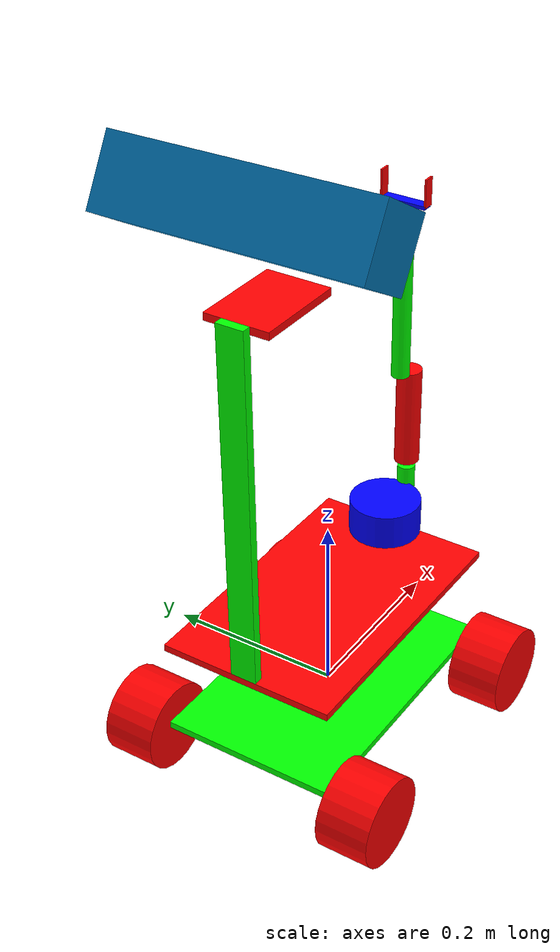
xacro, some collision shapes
<?xml version='1.0'?>

<robot name="ommp_real" xmlns:xacro="http://www.ros.org/wiki/xacro">

  <arg name="sim" default="false"/>

  <!-- Common design Properties-->
  <xacro:include filename="$(find ommp_description)/urdf/robots/ommp_real/configuration.urdf.xacro" />

  <!-- Include Sensors macros -->

    <!--ydlidar -->
  <xacro:include filename="$(find ommp_description)/urdf/sensors/ydlidar/ydlidar.urdf.xacro" />
    <!--imu -->
  <xacro:include filename="$(find ommp_description)/urdf/sensors/imu/imu.urdf.xacro" />
    <!-- kinect -->
  <xacro:include filename="$(find ommp_description)/urdf/sensors/kinect/kinect_real.urdf.xacro" />

  <!-- Include Bases-->
  <xacro:include filename="$(find ommp_description)/urdf/bases/ommp_base_real/ommp_bases.urdf.xacro" />

  <!-- Wheel Macro-->
  <xacro:include filename="$(find ommp_description)/urdf/wheels/costum_wheel/costum_wheel.urdf.xacro" />

  <!-- Incude Inertia macros -->
  <xacro:include filename="$(find ommp_description)/urdf/macros/inertia_macros.urdf.xacro" />

  <!-- Include costum Arm -->
  <xacro:include filename="$(find ommp_description)/urdf/arms/generic_arm/generic_arm.urdf.xacro" />

  <!-- Include costum Gripper -->
  <xacro:include filename="$(find ommp_description)/urdf/grippers/generic_gripper/generic_gripper.urdf.xacro" />

  <!-- All the bases of the robot -->
  <xacro:ommp_bases />

  <!-- Instanciate the 4 wheels of the robot -->
  <xacro:costum_wheel prefix="front_left" parent="chassis" gz="false">
    <origin xyz="${wheel_offset_x} ${wheel_offset_y} ${wheel_offset_z}" rpy="0 0 0"/>
  </xacro:costum_wheel>

  <xacro:costum_wheel prefix="front_right" parent="chassis" gz="false">
    <origin xyz="${wheel_offset_x} -${wheel_offset_y} ${wheel_offset_z}" rpy="0 0 0"/>
  </xacro:costum_wheel>

  <xacro:costum_wheel prefix="back_left" parent="chassis" gz="false">
    <origin xyz="-${wheel_offset_x} ${wheel_offset_y} ${wheel_offset_z}" rpy="0 0 0"/>
  </xacro:costum_wheel>

  <xacro:costum_wheel prefix="back_right" parent="chassis" gz="false">
    <origin xyz="-${wheel_offset_x} -${wheel_offset_y} ${wheel_offset_z}" rpy="0 0 0"/>
  </xacro:costum_wheel>

  <!-- Instanciate the sensor macros -->
  <!--(The gazebo plugin macros are instanciated on their corresponding xacro files) -->

  <xacro:sensor_kinect parent="${kinect_parent}" />

  <xacro:sensor_laser parent="chassis" />

  <xacro:imu_sensor parent="chassis" />

  <!-- Instanciate the Generic Arm macros -->

  <!-- connect arm -->
  <xacro:generic_arm
    prefix=""
    parent="${generic_arm_parent}"
    transmission_hw_interface="${transmission_hw_interface}"
    safety_limits="${safety_limits}"
    safety_pos_margin="${safety_pos_margin}"
    safety_k_position="${safety_k_position}"/>

  <!-- connect gripper-->
  <xacro:generic_gripper
    prefix=""
    parent="${generic_gripper_parent}"
    transmission_hw_interface="${transmission_hw_interface}"
    safety_limits="${safety_limits}"
    safety_pos_margin="${safety_pos_margin}"
    safety_k_position="${safety_k_position}"/>

</robot>

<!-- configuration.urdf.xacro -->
<robot xmlns:xacro="http://www.ros.org/wiki/xacro">

  <!-- Include or Not Gazebo Files-->
  <xacro:arg name="sim" default="false"/>
  <xacro:arg name="gz" default="false"/>

  <!-- PI Value -->
  <xacro:property name="M_PI" value="3.141592653" />
  <xacro:property name="PI" value="3.141592653" />

  <!--prefix-->
  <xacro:property name="prefix" value="" />

  <!-- Include Arm Configuration-->
  <xacro:include filename="$(find ommp_description)/urdf/robots/ommp_real/arm_configuration.urdf.xacro" />

  <!--chassis-->
  <xacro:property name="base_size">
    <box size = "0.318 0.2 0.008"/>
  </xacro:property>

  <!-- wheels-->

  <xacro:property name="wheel_size">
    <cylinder length = "0.06" radius="0.05"/>
  </xacro:property>

  <xacro:property name="wheel_offset_x" value="0.14" />
  <xacro:property name="wheel_offset_y" value="0.135" />
  <xacro:property name="wheel_offset_z" value="-0.019" />

  <!--Robot bases-->

  <xacro:property name="upper_base_size">
    <box size = "0.318 0.2 0.008"/>
  </xacro:property>

  <xacro:property name="upper_base_joint_origin">
    <origin xyz="0.0 0.0 0.108" rpy="0 0 0" />
  </xacro:property>

  <xacro:property name="kinect_base1_size">
    <box size = "0.01 0.03 0.4"/>
  </xacro:property>

  <xacro:property name="kinect_base1_joint_origin">
    <origin xyz="-0.154 0.0 0.204" rpy="0 0 0" />
  </xacro:property>

  <xacro:property name="kinect_base2_size">
    <box size = "0.1 0.07 0.008"/>
  </xacro:property>

  <xacro:property name="kinect_base2_joint_origin">
    <origin xyz="0.055 0.0 0.196" rpy="0 0 0" />
  </xacro:property>
  <!-- imu-->

  <xacro:property name="imu_parent" value="chassis" />

  <!-- lidar base-->
  <xacro:property name="lidar_parent" value="chassis" />

  <xacro:property name="lidar_joint_origin">
    <origin xyz="0.026 0.0 0.058" rpy="0 0 3.098" /> <!-- height 0.67 or lower --> <!-- exprimental start base 15.5 -> -0.4 + 3-->
  </xacro:property>

  <!-- kinect base-->

  <xacro:property name="kinect_parent" value="kinect_base2" />

  <xacro:property name="cam_px" value="-0.02" />
  <xacro:property name="cam_py" value="0.0" />
  <xacro:property name="cam_pz" value="0.095" />
  <xacro:property name="cam_or" value="0.0" />
  <!--xacro:property name="cam_op" value="0.0" /-->
  <xacro:property name="cam_op" value="0.541" />
  <xacro:property name="cam_oy" value="0.02" />

  <!-- Generic Arm Connect -->
  <xacro:property name="generic_arm_parent" value="upper_base" />

  <xacro:property name="generic_arm_joint_origin">
    <origin xyz="0.119 0.0 0.024" rpy="0 0 0" />
  </xacro:property>

  <!-- Generic Gripper Connect -->
  <xacro:property name="generic_gripper_parent" value="wrist_3_link" />

  <xacro:property name="ee_base_origin">
    <origin xyz="0.0 0.0 0.004" rpy="${M_PI/2} 0 0" />
  </xacro:property>

  <xacro:property name="ee_base_joint_origin">
    <origin xyz="0.0 0.0 0.006" rpy="0 0 0" />
  </xacro:property>

</robot>

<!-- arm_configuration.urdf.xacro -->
<robot xmlns:xacro="http://www.ros.org/wiki/xacro">

  <!-- Hardware Interface e.g Pos Eff -->
  <xacro:property name="transmission_hw_interface" value="hardware_interface/PositionJointInterface" />

  <!-- enable safety limits -->
  <xacro:property name="safety_limits" value="false" />
  <xacro:property name="safety_pos_margin" value="0.15" />
  <xacro:property name="safety_k_position" value="20" />

  <!-- Inertia parameters -->
  <xacro:property name="use_dummy_inertial" value="false" />
    <!-- Arm -->
    <xacro:property name="arm_base_mass" value="4.0" />
    <xacro:property name="shoulder_mass" value="7.778" />
    <xacro:property name="upper_arm_mass" value="12.93" />
    <xacro:property name="forearm_mass" value="3.87" />
    <xacro:property name="wrist_1_mass" value="1.96" />
    <xacro:property name="wrist_2_mass" value="1.96" />
    <xacro:property name="wrist_3_mass" value="0.202" />
    <!-- Gripper -->
    <xacro:property name="ee_base_mass" value="0.1" />
    <xacro:property name="finger1_mass" value="0.1" />
    <xacro:property name="finger2_mass" value="0.1" />

  <!-- Link sizes -->

  <!-- Factor to reduce the collision dimensions by -->
  <xacro:property name="collision_factor" value="0.5" />

    <!-- Arm -->
    <xacro:property name="arm_base_length" value="0.04" />
    <xacro:property name="arm_base_radius" value="0.04" />

    <xacro:property name="shoulder_length" value="0.04" />
    <xacro:property name="shoulder_radius" value="0.01" />

    <xacro:property name="upper_arm_length" value="0.115" />
    <xacro:property name="upper_arm_radius" value="0.014" />

    <xacro:property name="forearm_length" value="0.142" />
    <xacro:property name="forearm_radius" value="0.01" />

    <xacro:property name="wrist_1_length" value="0.02" />
    <xacro:property name="wrist_1_radius" value="0.01" />

    <xacro:property name="wrist_2_length" value="0.026" />
    <xacro:property name="wrist_2_radius" value="0.007" />

    <xacro:property name="wrist_3_length" value="0.006" />
    <xacro:property name="wrist_3_radius" value="0.004" />

    <!-- Gripper -->
    <xacro:property name="ee_base_x" value="0.012" />
    <xacro:property name="ee_base_y" value="0.004" />
    <xacro:property name="ee_base_z" value="0.05" />

    <xacro:property name="finger1_x" value="0.012" />
    <xacro:property name="finger1_y" value="0.002" />
    <xacro:property name="finger1_z" value="0.03" />

    <xacro:property name="finger2_x" value="0.012" />
    <xacro:property name="finger2_y" value="0.002" />
    <xacro:property name="finger2_z" value="0.03" />

  <!-- Arm Limits -->
  <xacro:property name="shoulder_pan_lower_limit" value="${M_PI * -1.0}" />
  <xacro:property name="shoulder_pan_upper_limit" value="${M_PI * 1.0}" />
  <xacro:property name="shoulder_lift_lower_limit" value="${M_PI * -1.0}" />
  <xacro:property name="shoulder_lift_upper_limit" value="${M_PI * 1.336}" />
  <xacro:property name="elbow_lower_limit" value="${M_PI * 0.0}" />
  <xacro:property name="elbow_upper_limit" value="${M_PI * 1.2036}" />
  <xacro:property name="wrist_1_upper_limit" value="${M_PI * 1.0}" />
  <xacro:property name="wrist_1_lower_limit" value="${M_PI * -1.0}" />
  <xacro:property name="wrist_2_upper_limit" value="${M_PI * 1.0}" />
  <xacro:property name="wrist_2_lower_limit" value="${M_PI * -1.0}" />
  <xacro:property name="wrist_3_upper_limit" value="${M_PI * 1.0}" />
  <xacro:property name="wrist_3_lower_limit" value="${M_PI * -1.0}" />

  <!-- Gripper Limits -->
  <xacro:property name="finger1_lower_limit" value="0.0" />
  <xacro:property name="finger1_upper_limit" value="0.025" />
  <xacro:property name="finger2_lower_limit" value="0.0" />
  <xacro:property name="finger2_upper_limit" value="0.025" />

  <!-- Arm Joint Axis -->
  <xacro:property name="shoulder_pan_joint_axis">
    <axis xyz="0 0 1"/>
  </xacro:property>
  <xacro:property name="shoulder_lift_joint_axis">
    <axis xyz="0 1 0"/>
  </xacro:property>
  <xacro:property name="elbow_joint_axis">
    <axis xyz="0 1 0"/>
  </xacro:property>
  <xacro:property name="wrist_1_joint_axis">
    <axis xyz="0 0 1"/>
  </xacro:property>
  <xacro:property name="wrist_2_joint_axis">
    <axis xyz="0 1 0"/>
  </xacro:property>
  <xacro:property name="wrist_3_joint_axis">
    <axis xyz="0 0 1"/>
  </xacro:property>

  <!-- Gripper Joint Axis -->
  <xacro:property name="finger1_joint_axis">
    <axis xyz="0 1 0"/>
  </xacro:property>
  <xacro:property name="finger2_joint_axis">
    <axis xyz="0 1 0"/>
  </xacro:property>

  <!-- Arm Origings -->
  <xacro:property name="arm_base_origin">
    <origin xyz="0.0 0.0 0.02" rpy="0 0 0" />
  </xacro:property>
  <xacro:property name="arm_base_joint_origin">
    <origin xyz="0.0 0.0 0.0" rpy="0 0 0" />
  </xacro:property>

  <xacro:property name="shoulder_origin">
    <origin xyz="0.045 0.0 0.02" rpy="0 0 0" />
  </xacro:property>
  <xacro:property name="shoulder_pan_joint_origin">
    <origin xyz="0.0 0.0 0.02" rpy="0 0 0" />
  </xacro:property>

  <xacro:property name="upper_arm_origin">
    <origin xyz="0.0 0.0 0.05525" rpy="0 0 0" />
  </xacro:property>
  <xacro:property name="shoulder_lift_joint_origin">
    <origin xyz="0.045 0.0 0.05" rpy="0 0 0" />
  </xacro:property>

  <xacro:property name="forearm_origin">
    <origin xyz="0.0 0.0 0.071" rpy="0 0 0" />
  </xacro:property>
  <xacro:property name="elbow_joint_origin">
    <origin xyz="-0.02 0.0 0.115" rpy="0 0 0" />
  </xacro:property>

  <xacro:property name="wrist_1_origin">
    <origin xyz="0.0 0.0 0.01" rpy="0 0 0" />
  </xacro:property>
  <xacro:property name="wrist_1_joint_origin">
    <origin xyz="0.0 0.0 0.142" rpy="0 0 0" />
  </xacro:property>

  <xacro:property name="wrist_2_origin">
    <origin xyz="0.0 0.0 0.013" rpy="0 0 0" />
  </xacro:property>
  <xacro:property name="wrist_2_joint_origin">
    <origin xyz="0.0 0.0 0.02" rpy="0 0 0" />
  </xacro:property>

  <xacro:property name="wrist_3_origin">
    <origin xyz="0.0 0.0 0.003" rpy="0 0 0" />
  </xacro:property>
  <xacro:property name="wrist_3_joint_origin">
    <origin xyz="0.0 0.0 0.026" rpy="0 0 0" />
  </xacro:property>

  <!-- Gripper Origings -->

  <xacro:property name="finger1_origin">
    <origin xyz="0.0 0.0 0.015" rpy="0 0 0" />
  </xacro:property>
  <xacro:property name="finger1_joint_origin">
    <origin xyz="0.0 -0.025 0.004" rpy="0 0 0" />
  </xacro:property>

  <xacro:property name="finger2_origin">
    <origin xyz="0.0 0.0 0.015" rpy="0 0 0" />
  </xacro:property>
  <xacro:property name="finger2_joint_origin">
    <origin xyz="0.0 0.025 0.004" rpy="0 0 ${M_PI}" />
  </xacro:property>

  <!-- Kinect Base -->
  <xacro:property name="kinect_base_joint_origin">
    <origin xyz="1.2 0.0 0.01" rpy="0 0 0" />
  </xacro:property>
  <xacro:property name="kinect_base_length" value="0.5" />
  <xacro:property name="kinect_base_radius" value="0.03" />
  <!-- Kinect Sensor -->

  <xacro:property name="kinect_parent" value="kinect_base" />
  <xacro:property name="kinect_joint_origin">
    <origin xyz="0.0 0.0 ${kinect_base_length*0.5 + 0.1 }" rpy="0 ${M_PI * 0.2} ${M_PI}" />
  </xacro:property>

</robot>

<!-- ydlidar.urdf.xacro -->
<robot xmlns:xacro="http://www.ros.org/wiki/xacro" name="lynx_rover">

  <xacro:if value="$(arg sim)">
      <!-- Include Ydlidar Plugin -->
      <xacro:include filename="$(find ommp_description)/urdf/sensors/ydlidar/ydlidar.gazebo.xacro" />

      <xacro:laser_gazebo_sensor link_name="laser_link" laser_name="ydlidar"
                         frame_name="laser_link"/>

  </xacro:if>

  <!-- ydlidar Link -->
  <xacro:macro name="sensor_laser" params="parent">
    <link name="laser_link">

      <inertial>
        <mass value="0.1"/>
        <origin xyz="0 0 0.0" rpy="0 0 0"/>
        <inertia
            ixx="1e-6" ixy="0" ixz="0"
            iyy="1e-6" iyz="0"
            izz="1e-6"
        />
      </inertial>
      <visual>
        <geometry>

          <mesh filename="package://ommp_description/meshes/sensors/ydlidar/ydlidar.dae"/>
        </geometry>
        <origin xyz="0 0 0" rpy="0 0 0"/>
      </visual>
        <collision>
          <origin xyz="0.0 0.0 0.0" rpy="0 0 0"/>
          <geometry>
            <box size="0.0 0.0 0.0"/>
          </geometry>
        </collision>
    </link>

    <joint type="fixed" name="ydlidar_joint">
      <xacro:insert_block name="lidar_joint_origin" />
      <child link="laser_link"/>
      <parent link="${parent}"/>
    </joint>
  </xacro:macro>

</robot>

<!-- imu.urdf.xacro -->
<robot xmlns:xacro="http://www.ros.org/wiki/xacro">

  <xacro:if value="$(arg sim)">
      <!-- Include Ydlidar Plugin -->
      <xacro:include filename="$(find ommp_description)/urdf/sensors/imu/imu.gazebo.xacro" />

      <xacro:imu_gazebo_sensor />

  </xacro:if>

  <!-- imu Link -->
  <xacro:macro name="imu_sensor" params="parent">
    <link name="imu_link">

      <inertial>
        <mass value="0.001"/>
        <origin xyz="0 0 0" rpy="0 0 0"/>
        <inertia
            ixx="1e-6" ixy="0" ixz="0"
            iyy="1e-6" iyz="0"
            izz="1e-6"
        />
      </inertial>

    </link>

    <joint type="fixed" name="imu_joint">
      <child link="imu_link"/>
      <parent link="${parent}"/>
    </joint>
  </xacro:macro>

</robot>

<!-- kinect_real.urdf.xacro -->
<robot xmlns:xacro="http://www.ros.org/wiki/xacro">

  <xacro:if value="$(arg sim)">

      <!-- Include Gazebo Plugin -->
      <xacro:include filename="$(find ommp_description)/urdf/sensors/kinect/kinect.gazebo.xacro" />

      <!-- Instantiate it -->
      <xacro:kinect_gazebo_sensor link_name="camera_depth_frame" camera_name="camera"
                       frame_name="camera_depth_optical_frame"/>

  </xacro:if>

  	<!-- remove if Kinect isn't moving -->

    <xacro:include filename="$(find ommp_description)/urdf/sensors/kinect/kinect.transmissions.xacro" />

	<!-- Parameterised in part by the values in kinect_properties.urdf.xacro -->

	<xacro:macro name="sensor_kinect" params="parent">
    <link name="kinect_dummy">
      <inertial>
        <mass value="0.001" />
        <origin xyz="0 0 0" />
        <inertia ixx="0.0001" ixy="0.0" ixz="0.0"
                 iyy="0.0001" iyz="0.0"
                 izz="0.0001" />
      </inertial>
    </link>
    <joint name="camera_dummy_joint" type="revolute">
      <origin xyz="${cam_px} ${cam_py} ${cam_pz}" rpy="${cam_or} ${cam_op} ${cam_oy}"/>
      <parent link="${parent}" />
      <child link="kinect_dummy" />
      <axis xyz="0 1 0" rpy="0 0 0" />
      <dynamics damping="0.0" friction="0.0"/>
      <limit effort="30" velocity="1.0" lower="-1.57" upper="1.57" />
      <safety_controller k_velocity="10" k_position="15" soft_lower_limit="-1.57" soft_upper_limit="1.57" />
    </joint>
    <joint name="camera_rgb_joint" type="fixed">
      <origin xyz="0.03 ${-cam_py} 0.016" rpy="0 0 0"/>
      <parent link="kinect_dummy"/>
      <child link="camera_rgb_frame" />
    </joint>
    <link name="camera_rgb_frame">
      <inertial>
        <mass value="0.001" />
        <origin xyz="0 0 0" />
        <inertia ixx="0.0001" ixy="0.0" ixz="0.0"
                 iyy="0.0001" iyz="0.0"
                 izz="0.0001" />
      </inertial>
    </link>
    <joint name="camera_rgb_optical_joint" type="fixed">
      <origin xyz="0 0 0" rpy="${-M_PI/2} 0 ${-M_PI/2}" />
      <parent link="camera_rgb_frame" />
      <child link="camera_rgb_optical_frame" />
    </joint>
    <link name="camera_rgb_optical_frame">
      <inertial>
        <mass value="0.001" />
        <origin xyz="0 0 0" />
        <inertia ixx="0.0001" ixy="0.0" ixz="0.0"
                 iyy="0.0001" iyz="0.0"
                 izz="0.0001" />
      </inertial>
    </link>

  <joint name="camera_joint" type="fixed">
    <origin xyz="-0.031 ${-cam_py} -0.016" rpy="0 0 0"/>
    <parent link="camera_rgb_frame"/>
    <child link="camera_link"/>
  </joint>
    <link name="camera_link">
    <visual>
     <origin xyz="0 0 0" rpy="0 0 ${M_PI/2}"/>
      <geometry>
       <mesh filename="package://ommp_description/meshes/sensors/kinect/kinect.dae"/>
      </geometry>
    </visual>
	  <collision>
      <origin xyz="0.0 0.0 0.0" rpy="0 0 0"/>
	    <geometry>
	      <box size="0.07271 0.27794 0.073"/>
	    </geometry>
	  </collision>
    <inertial>
      <mass value="0.001" />
      <origin xyz="0 0 0" />
      <inertia ixx="0.0001" ixy="0.0" ixz="0.0"
               iyy="0.0001" iyz="0.0"
               izz="0.0001" />
    </inertial>
  </link>

	<joint name="camera_depth_joint" type="fixed">
	  <origin xyz="0 ${2 * -cam_py} 0" rpy="0 0 0" />
	  <parent link="camera_rgb_frame" />
	  <child link="camera_depth_frame" />
	</joint>
	<link name="camera_depth_frame">
    <inertial>
      <mass value="0.001" />
      <origin xyz="0 0 0" />
      <inertia ixx="0.0001" ixy="0.0" ixz="0.0"
               iyy="0.0001" iyz="0.0"
               izz="0.0001" />
    </inertial>
	</link>
	<joint name="camera_depth_optical_joint" type="fixed">
	  <origin xyz="0 0 0" rpy="${-M_PI/2} 0 ${-M_PI/2}" />
	  <parent link="camera_depth_frame" />
	  <child link="camera_depth_optical_frame" />
	</joint>
	<link name="camera_depth_optical_frame">
    <inertial>
      <mass value="0.001" />
      <origin xyz="0 0 0" />
      <inertia ixx="0.0001" ixy="0.0" ixz="0.0"
               iyy="0.0001" iyz="0.0"
               izz="0.0001" />
    </inertial>
	</link>
	</xacro:macro>

</robot>

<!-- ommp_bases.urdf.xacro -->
<robot xmlns:xacro="http://www.ros.org/wiki/xacro">

  <xacro:if value="$(arg sim)">

      <xacro:include filename="$(find ommp_description)/urdf/bases/ommp_base_real/ommp_bases.gazebo.xacro" />
  </xacro:if>

  <xacro:macro name="ommp_bases">

    <link name="robot_footprint"></link>

    <joint name="robot_footprint_joint" type="fixed">
      <origin xyz="0 0 0" rpy="0 0 0" />
      <parent link="robot_footprint"/>
      <child link="chassis" />
    </joint>

    <link name='chassis'>

     <inertial>
       <origin xyz="0 0 0" rpy="0 0 0"/>
       <mass value="100"/>
       <inertia ixx="0.05"  ixy="0"  ixz="0" iyy="0.05" iyz="0" izz="0.05" />
     </inertial>

      <collision name='collision'>
        <origin xyz="0 0 0" rpy=" 0 0 0"/>
        <geometry>
          <xacro:insert_block name="base_size" />
        </geometry>
      </collision>

      <visual name='chassis_visual'>
        <origin xyz="0 0 0" rpy=" 0 0 0"/>
        <geometry>
          <xacro:insert_block name="base_size" />
        </geometry>
        <material name="green">
          <color rgba="0 1 0 1"/>
        </material>
      </visual>

    </link>

    <link name="upper_base">

      <inertial>
        <mass value="0.01"/>
        <origin xyz="0 0 0" rpy="0 0 0"/>
        <inertia
          ixx="0.00001" ixy="0" ixz="0"
          iyy="0.00001" iyz="0"
          izz="0.00001"
        />
      </inertial>
      <visual>
        <geometry>
          <xacro:insert_block name="upper_base_size" />
        </geometry>
        <origin xyz="0 0 0" rpy="0 0 0"/>
        <material name="red">
          <color rgba="1 0 0 1"/>
        </material>
      </visual>
      <collision>
        <geometry>
          <xacro:insert_block name="upper_base_size" />
        </geometry>
        <origin xyz="0 0 0" rpy="0 0 0"/>
      </collision>
    </link>

    <joint name="upper_base_joint" type="fixed">
      <xacro:insert_block name="upper_base_joint_origin" />
      <parent link="chassis"/>
      <child link="upper_base" />
    </joint>

    <link name="kinect_base1">

      <inertial>
        <mass value="0.01"/>
        <origin xyz="0 0 0" rpy="0 0 0"/>
        <inertia
          ixx="0.0001" ixy="0" ixz="0"
          iyy="0.0001" iyz="0"
          izz="0.0001"
        />
      </inertial>
      <visual>
        <geometry>
          <xacro:insert_block name="kinect_base1_size" />
        </geometry>
        <origin xyz="0 0 0" rpy="0 0 0"/>
        <material name="green">
          <color rgba="0 1 0 1"/>
        </material>
      </visual>
      <collision>
        <geometry>
          <xacro:insert_block name="kinect_base1_size" />
        </geometry>
        <origin xyz="0 0 0" rpy="0 0 0"/>
      </collision>
    </link>

    <joint name="kinect_base_joint1" type="fixed">
      <xacro:insert_block name="kinect_base1_joint_origin" />
      <parent link="upper_base"/>
      <child link="kinect_base1" />
    </joint>

    <link name="kinect_base2">

      <inertial>
        <mass value="0.01"/>
        <origin xyz="0 0 0" rpy="0 0 0"/>
        <inertia
          ixx="0.0001" ixy="0" ixz="0"
          iyy="0.0001" iyz="0"
          izz="0.0001"
        />
      </inertial>
      <visual>
        <geometry>
          <xacro:insert_block name="kinect_base2_size" />
        </geometry>
        <origin xyz="0 0 0" rpy="0 0 0"/>
        <material name="red">
          <color rgba="1 0 0 1"/>
        </material>
      </visual>
      <collision>
        <geometry>
          <xacro:insert_block name="kinect_base2_size" />
        </geometry>
        <origin xyz="0 0 0" rpy="0 0 0"/>
      </collision>
    </link>

    <joint name="kinect_base_joint2" type="fixed">
      <xacro:insert_block name="kinect_base2_joint_origin" />
      <parent link="kinect_base1"/>
      <child link="kinect_base2" />
    </joint>

  </xacro:macro>

</robot>

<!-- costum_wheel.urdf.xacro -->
<robot xmlns:xacro="http://www.ros.org/wiki/xacro">

  <!-- Wheels -->

  <xacro:macro name="costum_wheel" params="prefix parent *origin gz">

    <joint name="${prefix}_wheel_joint" type="continuous">
      <parent link="${parent}"/>
      <child link="${prefix}_wheel_link"/>
      <xacro:insert_block name="origin" />
      <axis xyz="0 1 0" rpy="0 0 0" />
    </joint>

    <link name="${prefix}_wheel_link">
      <visual>
        <origin xyz="0 0 0" rpy="${M_PI/2} 0 0" />
        <geometry>
          <xacro:insert_block name="wheel_size" />
        </geometry>
        <material name="blue">
          <color rgba="1 0 0 1"/>
        </material>
      </visual>

      <collision>
        <geometry>
          <xacro:insert_block name="wheel_size" />
        </geometry>
        <origin xyz="0 0 0" rpy="${M_PI/2} 0 0" />
      </collision>

      <inertial>
        <origin xyz="0 0 0" rpy="0 0 0"/>
        <mass value="0.477"/>
        <inertia ixx="0.0013"  ixy="0"  ixz="0" iyy="0.0024" iyz="0" izz="0.0013" />
      </inertial>

    </link>

    <!-- Transmission is important to link the joints and the controller-->
    <transmission name="${prefix}_wheel_joint_trans">
      <type>transmission_interface/SimpleTransmission</type>
      <joint name="${prefix}_wheel_joint" >
        <hardwareInterface>hardware_interface/VelocityJointInterface</hardwareInterface>
      </joint>
      <actuator name="${prefix}_wheel_joint_motor">
         <mechanicalReduction>1</mechanicalReduction>
      </actuator>
    </transmission>

    <xacro:if value="${gz}">

      <gazebo reference="${prefix}_wheel_link">
        <mu1 value="0.5"/>
        <mu2 value="0.5"/>
        <kp value="10000000.0" />
        <kd value="1.0" />
        <fdir1 value="1 0 0"/>
        <selfCollide>false</selfCollide>
        <material>Gazebo/Blue</material>
      </gazebo>

    </xacro:if>

  </xacro:macro>

</robot>

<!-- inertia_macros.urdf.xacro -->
<robot xmlns:xacro="http://www.ros.org/wiki/xacro">

  <xacro:macro name="cylinder_inertial" params="radius length mass *origin">
    <inertial>
      <mass value="${mass}" />
      <xacro:insert_block name="origin" />
      <inertia ixx="${0.0833333 * mass * (3 * radius * radius + length * length)}" ixy="0.0" ixz="0.0"
        iyy="${0.0833333 * mass * (3 * radius * radius + length * length)}" iyz="0.0"
        izz="${0.5 * mass * radius * radius}" />
    </inertial>
  </xacro:macro>

  <xacro:macro name="box_inertial" params="x y z mass *origin">
    <inertial>
      <mass value="${mass}" />
      <xacro:insert_block name="origin" />
      <inertia ixx="${0.0833333 * mass * (y * y + z * z)}" ixy="0.0" ixz="0.0"
        iyy="${0.0833333 * mass * (x * x + z * z)}" iyz="0.0"
        izz="${0.0833333 * mass * (x * x + z * z)}" />
    </inertial>
  </xacro:macro>

  <xacro:macro name="inertial_dummy" params="*origin">
    <inertial>
      <mass value="0.01" />
      <xacro:insert_block name="origin" />
      <inertia ixx="0.0001" ixy="0.0" ixz="0.0"
        iyy="0.0001" iyz="0.0"
        izz="0.0001" />
    </inertial>
  </xacro:macro>

</robot>

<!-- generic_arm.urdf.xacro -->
<robot xmlns:xacro="http://www.ros.org/wiki/xacro">

  <!-- Include Inertia Macros -->
  <xacro:include filename="$(find ommp_description)/urdf/macros/inertia_macros.urdf.xacro" />

  <!-- Include Transmissions -->
  <xacro:include filename="$(find ommp_description)/urdf/arms/generic_arm/generic_arm.transmissions.xacro" />

  <!-- Instantiate Transmissions -->
  <xacro:generic_arm_transmission prefix="${prefix}" hw_interface="${transmission_hw_interface}" />

  <!-- If we use simulation include Gazebo Stuff -->
  <xacro:if value="$(arg sim)">

      <!-- Gazebo link properties -->
      <xacro:include filename="$(find ommp_description)/urdf/arms/generic_arm/generic_arm.gazebo.xacro" />
      <!-- Instantiate it -->
      <xacro:generic_arm_gazebo prefix="${prefix}" />

  </xacro:if>

<!--Macro of the arm -->

<xacro:macro name="generic_arm" params="prefix parent
  transmission_hw_interface:=hardware_interface/PositionJointInterface
  safety_limits:=false safety_pos_margin:=0.15
  safety_k_position:=20">

  <link name="arm_footprint"/>

  <joint name="arm_joint" type="fixed">
    <parent link="${parent}"/>
    <child link="arm_footprint"/>
    <xacro:insert_block name="generic_arm_joint_origin" />
  </joint>

  <link name="${prefix}arm_base" >

    <visual>
      <xacro:insert_block name="arm_base_origin" />
      <geometry>
        <cylinder length = "${arm_base_length}" radius="${arm_base_radius}"/>
      </geometry>
      <material name="Blue">
        <color rgba="0.0 0.0 1.0 1.0"/>
      </material>
    </visual>

    <collision>
      <xacro:insert_block name="arm_base_origin" />
      <geometry>
        <cylinder length = "${arm_base_length * collision_factor}" radius="${arm_base_radius * collision_factor}"/>
      </geometry>
    </collision>
    <xacro:if value="${use_dummy_inertial}">
      <xacro:inertial_dummy>
        <xacro:insert_block name="arm_base_origin" />
      </xacro:inertial_dummy>
    </xacro:if>
    <xacro:unless value="${use_dummy_inertial}">
      <xacro:cylinder_inertial length = "${arm_base_length}" radius="${arm_base_radius}" mass="${arm_base_mass}">
        <xacro:insert_block name="arm_base_origin" />
      </xacro:cylinder_inertial>
    </xacro:unless>
  </link>

  <joint name="arm_footprint_joint" type="fixed">
    <parent link="arm_footprint"/>
    <child link="arm_base"/>
    <xacro:insert_block name="arm_base_joint_origin" />
  </joint>

  <!-- SHOULDER -->

  <link name="${prefix}shoulder_link" >
    <visual>
      <xacro:insert_block name="shoulder_origin" />
      <geometry>
        <cylinder length = "${shoulder_length}" radius="${shoulder_radius}"/>
      </geometry>
      <material name="Green">
        <color rgba="0.0 1.0 0.0 1.0"/>
      </material>
    </visual>
    <collision>
      <xacro:insert_block name="shoulder_origin" />
      <geometry>
        <cylinder length = "${shoulder_length * collision_factor}" radius="${shoulder_radius * collision_factor}"/>
      </geometry>
    </collision>
    <xacro:if value="${use_dummy_inertial}">
      <xacro:inertial_dummy>
        <xacro:insert_block name="shoulder_origin" />
      </xacro:inertial_dummy>
    </xacro:if>
    <xacro:unless value="${use_dummy_inertial}">
      <xacro:cylinder_inertial length = "${shoulder_length}" radius="${shoulder_radius}" mass="${shoulder_mass}">
        <xacro:insert_block name="shoulder_origin" />
      </xacro:cylinder_inertial>
    </xacro:unless>
  </link>

  <joint name="${prefix}shoulder_pan_joint" type="revolute">
    <parent link="${prefix}arm_base" />
    <child link = "${prefix}shoulder_link" />
    <xacro:insert_block name="shoulder_pan_joint_origin" />
    <xacro:insert_block name="shoulder_pan_joint_axis" />
    <limit lower="${shoulder_pan_lower_limit}" upper="${shoulder_pan_upper_limit}" effort="330.0" velocity="2.16"/>
    <xacro:if value="${safety_limits}">
      <safety_controller soft_lower_limit="${shoulder_pan_lower_limit + safety_pos_margin}" soft_upper_limit="${shoulder_pan_upper_limit - safety_pos_margin}" k_position="${safety_k_position}" k_velocity="0.0"/>
    </xacro:if>
    <dynamics damping="0.0" friction="0.0"/>
  </joint>

  <!--UPPER ARM -->

  <link name="${prefix}upper_arm_link" >
    <visual>
      <xacro:insert_block name="upper_arm_origin" />
      <geometry>
        <cylinder length = "${upper_arm_length}" radius="${upper_arm_radius}"/>
      </geometry>
      <material name="Red">
        <color rgba="1.0 0.0 0.0 1.0"/>
      </material>
    </visual>
    <collision>
      <xacro:insert_block name="upper_arm_origin" />
      <geometry>
        <cylinder length = "${upper_arm_length * collision_factor}" radius="${upper_arm_radius * collision_factor}"/>
      </geometry>
    </collision>
    <xacro:if value="${use_dummy_inertial}">
      <xacro:inertial_dummy>
        <xacro:insert_block name="upper_arm_origin" />
      </xacro:inertial_dummy>
    </xacro:if>
    <xacro:unless value="${use_dummy_inertial}">
      <xacro:cylinder_inertial length = "${upper_arm_length}" radius="${upper_arm_radius}" mass="${upper_arm_mass}">
        <xacro:insert_block name="upper_arm_origin" />
      </xacro:cylinder_inertial>
    </xacro:unless>
  </link>

  <joint name="${prefix}shoulder_lift_joint" type="revolute">
    <parent link="${prefix}shoulder_link" />
    <child link = "${prefix}upper_arm_link" />
    <xacro:insert_block name="shoulder_lift_joint_origin" />
    <xacro:insert_block name="shoulder_lift_joint_axis" />
    <limit lower="${shoulder_lift_lower_limit}" upper="${shoulder_lift_upper_limit}" effort="330.0" velocity="2.16"/>
    <xacro:if value="${safety_limits}">
      <safety_controller soft_lower_limit="${shoulder_lift_lower_limit + safety_pos_margin}" soft_upper_limit="${shoulder_lift_upper_limit - safety_pos_margin}" k_position="${safety_k_position}" k_velocity="0.0"/>
    </xacro:if>
    <dynamics damping="0.0" friction="0.0"/>
  </joint>

  <!--FOREARM -->

  <link name="${prefix}forearm_link" >
    <visual>
      <xacro:insert_block name="forearm_origin" />
      <geometry>
        <cylinder length = "${forearm_length}" radius="${forearm_radius}"/>
      </geometry>
      <material name="Green">
        <color rgba="0.0 1.0 0.0 1.0"/>
      </material>
    </visual>
    <collision>
      <xacro:insert_block name="forearm_origin" />
      <geometry>
        <cylinder length = "${forearm_length * collision_factor}" radius="${forearm_radius * collision_factor}"/>
      </geometry>
    </collision>
    <xacro:if value="${use_dummy_inertial}">
      <xacro:inertial_dummy>
        <xacro:insert_block name="forearm_origin" />
      </xacro:inertial_dummy>
    </xacro:if>
    <xacro:unless value="${use_dummy_inertial}">
      <xacro:cylinder_inertial length = "${forearm_length}" radius="${forearm_radius}" mass="${forearm_mass}">
        <xacro:insert_block name="forearm_origin" />
      </xacro:cylinder_inertial>
    </xacro:unless>
  </link>

  <joint name="${prefix}elbow_joint" type="revolute">
    <parent link="${prefix}upper_arm_link" />
    <child link = "${prefix}forearm_link" />
    <xacro:insert_block name="elbow_joint_origin" />
    <xacro:insert_block name="elbow_joint_axis" />
    <limit lower="${elbow_lower_limit}" upper="${elbow_upper_limit}" effort="330.0" velocity="2.16"/>
    <xacro:if value="${safety_limits}">
      <safety_controller soft_lower_limit="${elbow_lower_limit + safety_pos_margin}" soft_upper_limit="${elbow_upper_limit - safety_pos_margin}" k_position="${safety_k_position}" k_velocity="0.0"/>
    </xacro:if>
    <dynamics damping="0.0" friction="0.0"/>
  </joint>

 <!-- Wrist 1 link -->

  <link name="${prefix}wrist_1_link" >
    <visual>
      <xacro:insert_block name="wrist_1_origin" />
      <geometry>
        <cylinder length = "${wrist_1_length}" radius="${wrist_1_radius}"/>
      </geometry>
      <material name="Red">
        <color rgba="1.0 0.0 0.0 1.0"/>
      </material>
    </visual>
    <collision>
      <xacro:insert_block name="wrist_1_origin" />
      <geometry>
        <cylinder length = "${wrist_1_length * collision_factor}" radius="${wrist_1_radius * collision_factor}"/>
      </geometry>
    </collision>
    <xacro:if value="${use_dummy_inertial}">
      <xacro:inertial_dummy>
        <xacro:insert_block name="wrist_1_origin" />
      </xacro:inertial_dummy>
    </xacro:if>
    <xacro:unless value="${use_dummy_inertial}">
      <xacro:cylinder_inertial length = "${wrist_1_length}" radius="${wrist_1_radius}" mass="${wrist_1_mass}">
        <xacro:insert_block name="wrist_1_origin" />
      </xacro:cylinder_inertial>
    </xacro:unless>
  </link>

  <joint name="${prefix}wrist_1_joint" type="revolute">
    <parent link="${prefix}forearm_link" />
    <child link = "${prefix}wrist_1_link" />
    <xacro:insert_block name="wrist_1_joint_origin" />
    <xacro:insert_block name="wrist_1_joint_axis" />
    <limit lower="${wrist_1_lower_limit}" upper="${wrist_1_upper_limit}" effort="330.0" velocity="2.16"/>
    <xacro:if value="${safety_limits}">
      <safety_controller soft_lower_limit="${wrist_1_lower_limit + safety_pos_margin}" soft_upper_limit="${wrist_1_upper_limit - safety_pos_margin}" k_position="${safety_k_position}" k_velocity="0.0"/>
    </xacro:if>
    <dynamics damping="0.0" friction="0.0"/>
  </joint>

 <!-- Wrist 2 link -->

  <link name="${prefix}wrist_2_link" >
    <visual>
      <xacro:insert_block name="wrist_2_origin" />
      <geometry>
        <cylinder length = "${wrist_2_length}" radius="${wrist_2_radius}"/>
      </geometry>
      <material name="Blue">
        <color rgba="0.0 0.0 1.0 1.0"/>
      </material>
    </visual>
    <collision>
      <xacro:insert_block name="wrist_2_origin" />
      <geometry>
        <cylinder length = "${wrist_2_length * collision_factor}" radius="${wrist_2_radius * collision_factor}"/>
      </geometry>
    </collision>
    <xacro:if value="${use_dummy_inertial}">
      <xacro:inertial_dummy>
        <xacro:insert_block name="wrist_2_origin" />
      </xacro:inertial_dummy>
    </xacro:if>
    <xacro:unless value="${use_dummy_inertial}">
      <xacro:cylinder_inertial length = "${wrist_2_length}" radius="${wrist_2_radius}" mass="${wrist_2_mass}">
        <xacro:insert_block name="wrist_2_origin" />
      </xacro:cylinder_inertial>
    </xacro:unless>
  </link>

  <joint name="${prefix}wrist_2_joint" type="revolute">
    <parent link="${prefix}wrist_1_link" />
    <child link = "${prefix}wrist_2_link" />
    <xacro:insert_block name="wrist_2_joint_origin" />
    <xacro:insert_block name="wrist_2_joint_axis" />
    <limit lower="${wrist_2_lower_limit}" upper="${wrist_2_upper_limit}" effort="330.0" velocity="2.16"/>
    <xacro:if value="${safety_limits}">
      <safety_controller soft_lower_limit="${wrist_2_lower_limit + safety_pos_margin}" soft_upper_limit="${wrist_2_upper_limit - safety_pos_margin}" k_position="${safety_k_position}" k_velocity="0.0"/>
    </xacro:if>
    <dynamics damping="0.0" friction="0.0"/>
  </joint>

 <!-- Wrist 3 link -->

  <link name="${prefix}wrist_3_link" >
    <visual>
      <xacro:insert_block name="wrist_3_origin" />
      <geometry>
        <cylinder length = "${wrist_3_length}" radius="${wrist_3_radius}"/>
      </geometry>
      <material name="Black">
        <color rgba="0.0 0.0 0.0 1.0"/>
      </material>
    </visual>
    <collision>
      <xacro:insert_block name="wrist_3_origin" />
      <geometry>
        <cylinder length = "${wrist_3_length * collision_factor}" radius="${wrist_3_radius * collision_factor}"/>
      </geometry>
    </collision>
    <xacro:if value="${use_dummy_inertial}">
      <xacro:inertial_dummy>
        <xacro:insert_block name="wrist_3_origin" />
      </xacro:inertial_dummy>
    </xacro:if>
    <xacro:unless value="${use_dummy_inertial}">
      <xacro:cylinder_inertial length = "${wrist_3_length}" radius="${wrist_3_radius}" mass="${wrist_3_mass}">
        <xacro:insert_block name="wrist_3_origin" />
      </xacro:cylinder_inertial>
    </xacro:unless>
  </link>

  <joint name="${prefix}wrist_3_joint" type="revolute">
    <parent link="${prefix}wrist_2_link" />
    <child link = "${prefix}wrist_3_link" />
    <xacro:insert_block name="wrist_3_joint_origin" />
    <xacro:insert_block name="wrist_3_joint_axis" />
    <limit lower="${wrist_2_lower_limit}" upper="${wrist_2_upper_limit}" effort="330.0" velocity="2.16"/>
    <xacro:if value="${safety_limits}">
      <safety_controller soft_lower_limit="${wrist_2_lower_limit + safety_pos_margin}" soft_upper_limit="${wrist_2_upper_limit - safety_pos_margin}" k_position="${safety_k_position}" k_velocity="0.0"/>
    </xacro:if>
    <dynamics damping="0.0" friction="0.0"/>
  </joint>

</xacro:macro>

</robot>

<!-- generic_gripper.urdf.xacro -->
<robot xmlns:xacro="http://www.ros.org/wiki/xacro">

  <!-- Include Inertia Macros -->
  <xacro:include filename="$(find ommp_description)/urdf/macros/inertia_macros.urdf.xacro" />

  <!-- Include Transmissions -->
  <xacro:include filename="$(find ommp_description)/urdf/grippers/generic_gripper/generic_gripper.transmissions.xacro" />

  <!-- Instantiate Transmissions -->
  <xacro:generic_gripper_transmission prefix="${prefix}" hw_interface="${transmission_hw_interface}" />

  <!-- If we use simulation include Gazebo Stuff -->
  <xacro:if value="$(arg sim)">

      <!-- Gazebo gripper -->
      <xacro:include filename="$(find ommp_description)/urdf/grippers/generic_gripper/generic_gripper.gazebo.xacro" />
       <xacro:generic_gripper_gazebo prefix="${prefix}" />

  </xacro:if>

<xacro:property name="m_ee" value="0.01" />
<xacro:property name="m_f1" value="0.01" />
<xacro:property name="m_f2" value="0.01" />

<xacro:macro name="generic_gripper" params="prefix parent
  transmission_hw_interface:=hardware_interface/PositionJointInterface
  safety_limits:=false safety_pos_margin:=0.15
  safety_k_position:=20">

  <link name="${prefix}ee_base" >

    <visual>
      <xacro:insert_block name="ee_base_origin" />
      <geometry>
        <box size = "${ee_base_x} ${ee_base_y} ${ee_base_z}"/>
      </geometry>
      <material name="Blue">
        <color rgba="0.0 0.0 1.0 1.0"/>
      </material>
    </visual>

    <collision>
      <xacro:insert_block name="ee_base_origin" />
      <geometry>
        <box size = "${ee_base_x * collision_factor} ${ee_base_y * collision_factor} ${ee_base_z * collision_factor}"/>
      </geometry>
    </collision>
    <xacro:if value="${use_dummy_inertial}">
      <xacro:inertial_dummy>
        <xacro:insert_block name="ee_base_origin" />
      </xacro:inertial_dummy>
    </xacro:if>
    <xacro:unless value="${use_dummy_inertial}">
      <xacro:box_inertial x = "${ee_base_x}" y = "${ee_base_y}" z = "${ee_base_z}" mass="${ee_base_mass}">
        <xacro:insert_block name="ee_base_origin" />
      </xacro:box_inertial>
    </xacro:unless>
  </link>

  <joint name="ee_footprint_joint" type="fixed">
    <parent link="${parent}"/>
    <child link="${prefix}ee_base"/>
    <xacro:insert_block name="ee_base_joint_origin" />
  </joint>

  <link name="${prefix}finger1" >

    <visual>
      <xacro:insert_block name="finger1_origin" />
      <geometry>
        <box size = "${finger1_x} ${finger1_y} ${finger1_z}"/>
      </geometry>
      <material name="Red">
        <color rgba="1.0 0.0 0.0 1.0"/>
      </material>
    </visual>

    <collision>
      <xacro:insert_block name="finger1_origin" />
      <geometry>
        <box size = "${finger1_x * collision_factor} ${finger1_y * collision_factor} ${finger1_z * collision_factor}"/>
      </geometry>
    </collision>
    <xacro:if value="${use_dummy_inertial}">
      <xacro:inertial_dummy>
        <xacro:insert_block name="finger1_origin" />
      </xacro:inertial_dummy>
    </xacro:if>
    <xacro:unless value="${use_dummy_inertial}">
      <xacro:box_inertial x = "${finger1_x}" y = "${finger1_y}" z = "${finger1_z}" mass="${finger1_mass}">
        <xacro:insert_block name="finger1_origin" />
      </xacro:box_inertial>
    </xacro:unless>
  </link>

  <joint name="${prefix}finger1_joint" type="prismatic">
    <parent link="${prefix}ee_base" />
    <child link = "${prefix}finger1" />
    <xacro:insert_block name="finger1_joint_origin" />
    <xacro:insert_block name="finger1_joint_axis" />
    <limit lower="${finger1_lower_limit}" upper="${finger1_upper_limit}" effort="330.0" velocity="2.16"/>
    <xacro:if value="${safety_limits}">
      <safety_controller soft_lower_limit="${finger1_lower_limit + safety_pos_margin}" soft_upper_limit="${finger1_upper_limit - safety_pos_margin}" k_position="${safety_k_position}" k_velocity="0.0"/>
    </xacro:if>
    <dynamics damping="0.0" friction="0.0"/>
  </joint>

  <link name="${prefix}finger2" >

    <visual>
      <xacro:insert_block name="finger2_origin" />
      <geometry>
        <box size = "${finger2_x} ${finger2_y} ${finger2_z}"/>
      </geometry>
      <material name="Red">
        <color rgba="1.0 0.0 0.0 1.0"/>
      </material>
    </visual>

    <collision>
      <xacro:insert_block name="finger2_origin" />
      <geometry>
        <box size = "${finger2_x * collision_factor} ${finger2_y * collision_factor} ${finger2_z * collision_factor}"/>
      </geometry>
    </collision>
    <xacro:if value="${use_dummy_inertial}">
      <xacro:inertial_dummy>
        <xacro:insert_block name="finger2_origin" />
      </xacro:inertial_dummy>
    </xacro:if>
    <xacro:unless value="${use_dummy_inertial}">
      <xacro:box_inertial x = "${finger2_x}" y = "${finger2_y}" z = "${finger2_z}" mass="${finger2_mass}">
        <xacro:insert_block name="finger2_origin" />
      </xacro:box_inertial>
    </xacro:unless>
  </link>

  <joint name="${prefix}finger2_joint" type="prismatic">
    <parent link="${prefix}ee_base" />
    <child link = "${prefix}finger2" />
    <xacro:insert_block name="finger2_joint_origin" />
    <xacro:insert_block name="finger2_joint_axis" />
    <limit lower="${finger2_lower_limit}" upper="${finger2_upper_limit}" effort="330.0" velocity="2.16"/>
    <xacro:if value="${safety_limits}">
      <safety_controller soft_lower_limit="${finger2_lower_limit + safety_pos_margin}" soft_upper_limit="${finger2_upper_limit - safety_pos_margin}" k_position="${safety_k_position}" k_velocity="0.0"/>
    </xacro:if>
    <dynamics damping="0.0" friction="0.0"/>
  </joint>

  </xacro:macro>

</robot>
